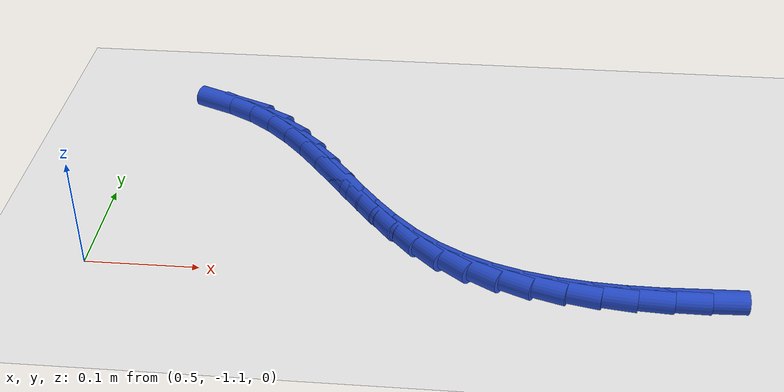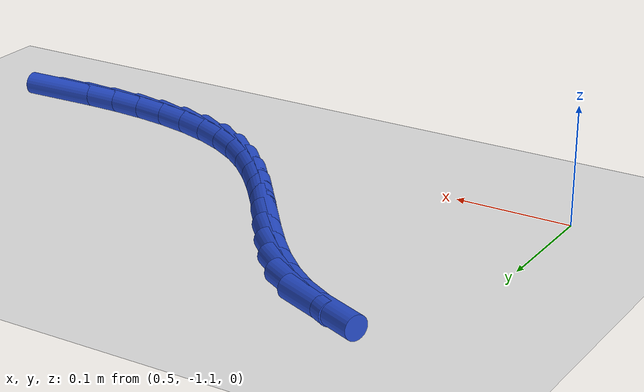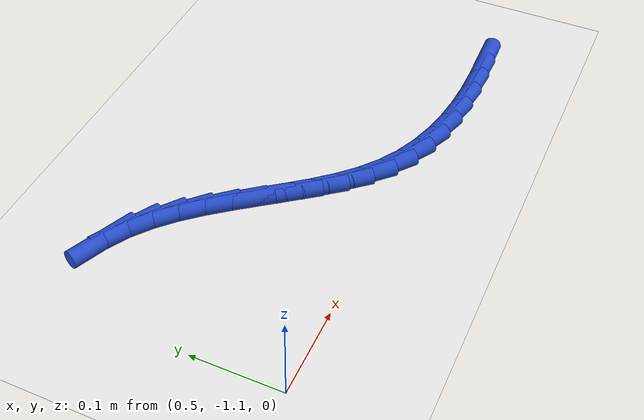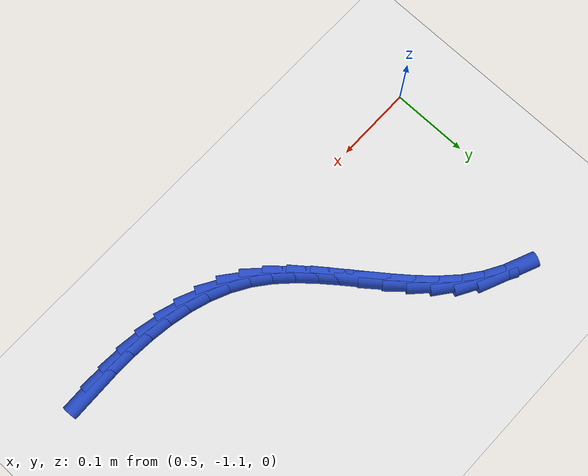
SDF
<sdf version="1.6">
 <world name="default">
  <model name="ground_plane">
   <static>1</static>
   <link name="link">
    <collision name="collision">
     <geometry><plane><normal>0 0 1</normal><size>100 100</size></plane></geometry>
     <surface><friction><ode><mu>100</mu><mu2>50</mu2></ode></friction></surface>
    </collision>
    <visual name="visual">
     <cast_shadows>0</cast_shadows>
     <geometry><plane><normal>0 0 1</normal><size>100 100</size></plane></geometry>
     <material>
      <script><uri>file://media/materials/scripts/gazebo.material</uri><name>Gazebo/WhiteGlow</name></script>
     </material>
    </visual>
   </link>
  </model>
  <model name="line">
   <link name="link_181">
    <pose>1.0155180502340744 -1.1182997110990767 0.01 0 1.57 0.03138632478776714</pose>
    <collision name="collision">
     <geometry><cylinder><radius>0.01</radius><length>0.08</length></cylinder></geometry>
    </collision>
    <visual name="visual">
     <material>
      <script><name>Gazebo/Blue</name><uri>file://media/materials/scripts/gazebo.material</uri></script>
     </material>
     <geometry><cylinder><radius>0.01</radius><length>0.08</length></cylinder></geometry>
    </visual>
   </link>
   <link name="link_182">
    <pose>0.9858001030326078 -1.1192327546429193 0.01 0 1.57 -0.013598320029122703</pose>
    <collision name="collision">
     <geometry><cylinder><radius>0.01</radius><length>0.08</length></cylinder></geometry>
    </collision>
    <visual name="visual">
     <material>
      <script><name>Gazebo/Blue</name><uri>file://media/materials/scripts/gazebo.material</uri></script>
     </material>
     <geometry><cylinder><radius>0.01</radius><length>0.08</length></cylinder></geometry>
    </visual>
   </link>
   <link name="link_183">
    <pose>0.9563331297478037 -1.118832028609606 0.01 0 1.57 -0.06853904658903257</pose>
    <collision name="collision">
     <geometry><cylinder><radius>0.01</radius><length>0.08</length></cylinder></geometry>
    </collision>
    <visual name="visual">
     <material>
      <script><name>Gazebo/Blue</name><uri>file://media/materials/scripts/gazebo.material</uri></script>
     </material>
     <geometry><cylinder><radius>0.01</radius><length>0.08</length></cylinder></geometry>
    </visual>
   </link>
   <link name="link_184">
    <pose>0.9273511676705903 -1.1168425162728322 0.01 0 1.57 -0.13480796966667288</pose>
    <collision name="collision">
     <geometry><cylinder><radius>0.01</radius><length>0.08</length></cylinder></geometry>
    </collision>
    <visual name="visual">
     <material>
      <script><name>Gazebo/Blue</name><uri>file://media/materials/scripts/gazebo.material</uri></script>
     </material>
     <geometry><cylinder><radius>0.01</radius><length>0.08</length></cylinder></geometry>
    </visual>
   </link>
   <link name="link_185">
    <pose>0.8990882540918947 -1.1130092009062909 0.01 0 1.57 -0.21389340878827023</pose>
    <collision name="collision">
     <geometry><cylinder><radius>0.01</radius><length>0.08</length></cylinder></geometry>
    </collision>
    <visual name="visual">
     <material>
      <script><name>Gazebo/Blue</name><uri>file://media/materials/scripts/gazebo.material</uri></script>
     </material>
     <geometry><cylinder><radius>0.01</radius><length>0.08</length></cylinder></geometry>
    </visual>
   </link>
   <link name="link_186">
    <pose>0.8717784263026462 -1.107077065783676 0.01 0 1.57 -0.3071557424122049</pose>
    <collision name="collision">
     <geometry><cylinder><radius>0.01</radius><length>0.08</length></cylinder></geometry>
    </collision>
    <visual name="visual">
     <material>
      <script><name>Gazebo/Blue</name><uri>file://media/materials/scripts/gazebo.material</uri></script>
     </material>
     <geometry><cylinder><radius>0.01</radius><length>0.08</length></cylinder></geometry>
    </visual>
   </link>
   <link name="link_187">
    <pose>0.8456557215937721 -1.0987910941786823 0.01 0 1.57 -0.4153932980937955</pose>
    <collision name="collision">
     <geometry><cylinder><radius>0.01</radius><length>0.08</length></cylinder></geometry>
    </collision>
    <visual name="visual">
     <material>
      <script><name>Gazebo/Blue</name><uri>file://media/materials/scripts/gazebo.material</uri></script>
     </material>
     <geometry><cylinder><radius>0.01</radius><length>0.08</length></cylinder></geometry>
    </visual>
   </link>
   <link name="link_188">
    <pose>0.8209541772562003 -1.087896269365003 0.01 0 1.57 -0.5382115228905712</pose>
    <collision name="collision">
     <geometry><cylinder><radius>0.01</radius><length>0.08</length></cylinder></geometry>
    </collision>
    <visual name="visual">
     <material>
      <script><name>Gazebo/Blue</name><uri>file://media/materials/scripts/gazebo.material</uri></script>
     </material>
     <geometry><cylinder><radius>0.01</radius><length>0.08</length></cylinder></geometry>
    </visual>
   </link>
   <link name="link_189">
    <pose>0.7979078305808586 -1.074137574616332 0.01 0 1.57 -0.6673108389471145</pose>
    <collision name="collision">
     <geometry><cylinder><radius>0.01</radius><length>0.08</length></cylinder></geometry>
    </collision>
    <visual name="visual">
     <material>
      <script><name>Gazebo/Blue</name><uri>file://media/materials/scripts/gazebo.material</uri></script>
     </material>
     <geometry><cylinder><radius>0.01</radius><length>0.08</length></cylinder></geometry>
    </visual>
   </link>
   <link name="link_190">
    <pose>0.7766566183547937 -1.0573940332674703 0.01 0 1.57 -0.7731956794098281</pose>
    <collision name="collision">
     <geometry><cylinder><radius>0.01</radius><length>0.08</length></cylinder></geometry>
    </collision>
    <visual name="visual">
     <material>
      <script><name>Gazebo/Blue</name><uri>file://media/materials/scripts/gazebo.material</uri></script>
     </material>
     <geometry><cylinder><radius>0.01</radius><length>0.08</length></cylinder></geometry>
    </visual>
   </link>
   <link name="link_191">
    <pose>0.7569242945543858 -1.0381374940587342 0.01 0 1.57 -0.8489571444978746</pose>
    <collision name="collision">
     <geometry><cylinder><radius>0.01</radius><length>0.08</length></cylinder></geometry>
    </collision>
    <visual name="visual">
     <material>
      <script><name>Gazebo/Blue</name><uri>file://media/materials/scripts/gazebo.material</uri></script>
     </material>
     <geometry><cylinder><radius>0.01</radius><length>0.08</length></cylinder></geometry>
    </visual>
   </link>
   <link name="link_192">
    <pose>0.7383195931736526 -1.0170036442310695 0.01 0 1.57 -0.8969287170715928</pose>
    <collision name="collision">
     <geometry><cylinder><radius>0.01</radius><length>0.08</length></cylinder></geometry>
    </collision>
    <visual name="visual">
     <material>
      <script><name>Gazebo/Blue</name><uri>file://media/materials/scripts/gazebo.material</uri></script>
     </material>
     <geometry><cylinder><radius>0.01</radius><length>0.08</length></cylinder></geometry>
    </visual>
   </link>
   <link name="link_193">
    <pose>0.7204512442999943 -0.9946281765901481 0.01 0 1.57 -0.9193443544812862</pose>
    <collision name="collision">
     <geometry><cylinder><radius>0.01</radius><length>0.08</length></cylinder></geometry>
    </collision>
    <visual name="visual">
     <material>
      <script><name>Gazebo/Blue</name><uri>file://media/materials/scripts/gazebo.material</uri></script>
     </material>
     <geometry><cylinder><radius>0.01</radius><length>0.08</length></cylinder></geometry>
    </visual>
   </link>
   <link name="link_194">
    <pose>0.7029279780208099 -0.9716467839416391 0.01 0 1.57 -0.9174492142478446</pose>
    <collision name="collision">
     <geometry><cylinder><radius>0.01</radius><length>0.08</length></cylinder></geometry>
    </collision>
    <visual name="visual">
     <material>
      <script><name>Gazebo/Blue</name><uri>file://media/materials/scripts/gazebo.material</uri></script>
     </material>
     <geometry><cylinder><radius>0.01</radius><length>0.08</length></cylinder></geometry>
    </visual>
   </link>
   <link name="link_195">
    <pose>0.685358524423499 -0.9486951590912132 0.01 0 1.57 -0.8912047488902456</pose>
    <collision name="collision">
     <geometry><cylinder><radius>0.01</radius><length>0.08</length></cylinder></geometry>
    </collision>
    <visual name="visual">
     <material>
      <script><name>Gazebo/Blue</name><uri>file://media/materials/scripts/gazebo.material</uri></script>
     </material>
     <geometry><cylinder><radius>0.01</radius><length>0.08</length></cylinder></geometry>
    </visual>
   </link>
   <link name="link_196">
    <pose>0.6673516135954609 -0.9264089948445404 0.01 0 1.57 -0.8393221754702319</pose>
    <collision name="collision">
     <geometry><cylinder><radius>0.01</radius><length>0.08</length></cylinder></geometry>
    </collision>
    <visual name="visual">
     <material>
      <script><name>Gazebo/Blue</name><uri>file://media/materials/scripts/gazebo.material</uri></script>
     </material>
     <geometry><cylinder><radius>0.01</radius><length>0.08</length></cylinder></geometry>
    </visual>
   </link>
   <link name="link_197">
    <pose>0.6485159756240952 -0.9054239840072911 0.01 0 1.57 -0.7596398588665915</pose>
    <collision name="collision">
     <geometry><cylinder><radius>0.01</radius><length>0.08</length></cylinder></geometry>
    </collision>
    <visual name="visual">
     <material>
      <script><name>Gazebo/Blue</name><uri>file://media/materials/scripts/gazebo.material</uri></script>
     </material>
     <geometry><cylinder><radius>0.01</radius><length>0.08</length></cylinder></geometry>
    </visual>
   </link>
   <link name="link_198">
    <pose>0.6284603405968011 -0.8863758193851352 0.01 0 1.57 -0.6501272643013278</pose>
    <collision name="collision">
     <geometry><cylinder><radius>0.01</radius><length>0.08</length></cylinder></geometry>
    </collision>
    <visual name="visual">
     <material>
      <script><name>Gazebo/Blue</name><uri>file://media/materials/scripts/gazebo.material</uri></script>
     </material>
     <geometry><cylinder><radius>0.01</radius><length>0.08</length></cylinder></geometry>
    </visual>
   </link>
   <link name="link_199">
    <pose>0.6067934386009786 -0.8699001937837434 0.01 0 1.57 -0.5173000738921086</pose>
    <collision name="collision">
     <geometry><cylinder><radius>0.01</radius><length>0.08</length></cylinder></geometry>
    </collision>
    <visual name="visual">
     <material>
      <script><name>Gazebo/Blue</name><uri>file://media/materials/scripts/gazebo.material</uri></script>
     </material>
     <geometry><cylinder><radius>0.01</radius><length>0.08</length></cylinder></geometry>
    </visual>
   </link>
   <link name="link_200">
    <pose>0.5832154125074582 -0.856484713793432 0.01 0 1.57 -0.4011884182316168</pose>
    <collision name="collision">
     <geometry><cylinder><radius>0.01</radius><length>0.08</length></cylinder></geometry>
    </collision>
    <visual name="visual">
     <material>
      <script><name>Gazebo/Blue</name><uri>file://media/materials/scripts/gazebo.material</uri></script>
     </material>
     <geometry><cylinder><radius>0.01</radius><length>0.08</length></cylinder></geometry>
    </visual>
   </link>
  </model>
 </world>
</sdf>
